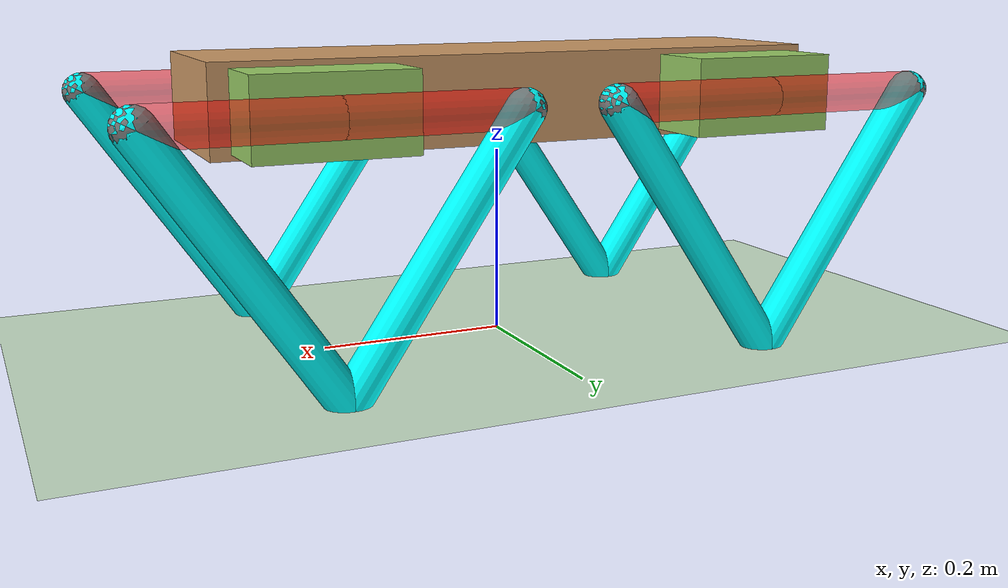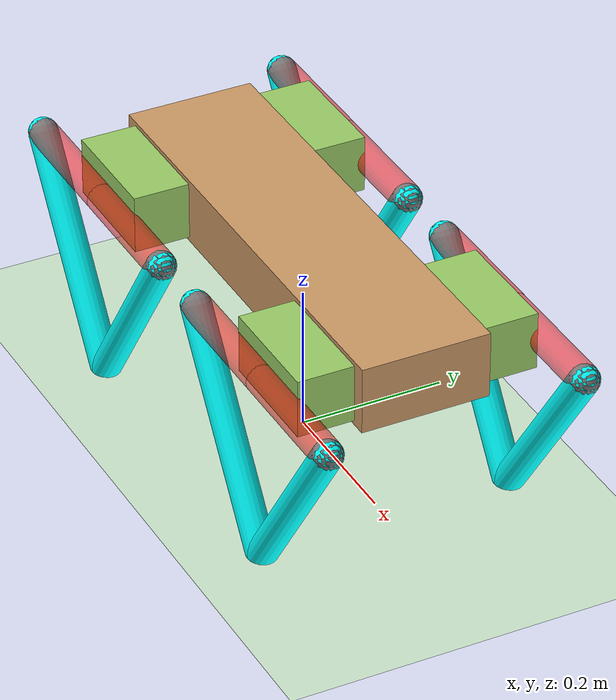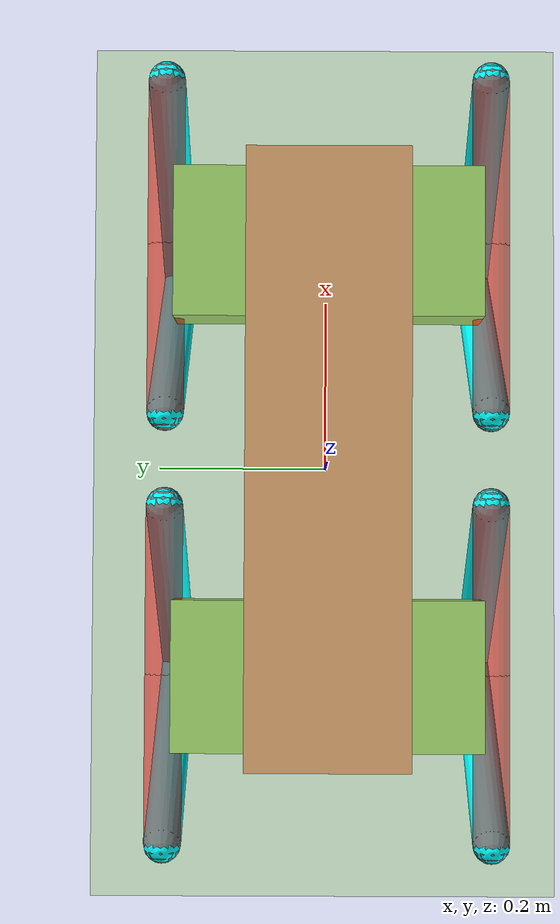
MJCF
<!-- Stanford Woofer Model

    The state space is populated with joints in the order that they are
    defined in this file.
-->
<mujoco model="woofer">
  <compiler angle="radian" coordinate="local" inertiafromgeom="true" settotalmass="woofer_mass"/>

  <default>
    <joint armature="0.0024" solimplimit="0.9 0.95 0.001" solreflimit="0.001 1" stiffness="0"/>
    <geom conaffinity="0" condim="3" contype="1" friction="1.5 .1 .1" rgba="0.8 0.6 .4 1" solimp="0.9 0.95 0.001" solref="0.005 2"/>
    <motor ctrllimited="true" forcelimited="true"/>
  </default>

	<option>
		<flag sensornoise="enable"/>
	</option>

	<sensor>
		<accelerometer name="accel" noise="0.01" site="imu_site"/>
		<gyro name="gyro" noise="0.02" site="imu_site"/>

		<jointpos joint="fr_x" noise="0.001"/>
		<jointpos joint="fr_thigh_1" noise="0.001"/>
		<jointpos joint="fr_thigh_2" noise="0.001"/>

		<jointpos joint="fl_x" noise="0.001"/>
		<jointpos joint="fl_thigh_1" noise="0.001"/>
		<jointpos joint="fl_thigh_2" noise="0.001"/>

		<jointpos joint="br_x" noise="0.001"/>
		<jointpos joint="br_thigh_1" noise="0.001"/>
		<jointpos joint="br_thigh_2" noise="0.001"/>

		<jointpos joint="bl_x" noise="0.001"/>
		<jointpos joint="bl_thigh_1" noise="0.001"/>
		<jointpos joint="bl_thigh_2" noise="0.001"/>

		<jointvel joint="fr_x" noise="0.01"/>
		<jointvel joint="fr_thigh_1" noise="0.01"/>
		<jointvel joint="fr_thigh_2" noise="0.01"/>

		<jointvel joint="fl_x" noise="0.01"/>
		<jointvel joint="fl_thigh_1" noise="0.01"/>
		<jointvel joint="fl_thigh_2" noise="0.01"/>

		<jointvel joint="br_x" noise="0.01"/>
		<jointvel joint="br_thigh_1" noise="0.01"/>
		<jointvel joint="br_thigh_2" noise="0.01"/>

		<jointvel joint="bl_x" noise="0.01"/>
		<jointvel joint="bl_thigh_1" noise="0.01"/>
		<jointvel joint="bl_thigh_2" noise="0.01"/>
	</sensor>

  <size nstack="300000" nuser_geom="1"/>

	<!-- Took out gravity="0 0 -9.81" term-->
  <option timestep="0.001"/>
  <asset>
    <texture builtin="gradient" height="100" rgb1="1 1 1" rgb2="0 0 0" type="skybox" width="100"/>
    <texture builtin="flat" height="1278" mark="cross" markrgb="1 1 1" name="texgeom" random="0.01" rgb1="0.8 0.6 0.4" rgb2="0.8 0.6 0.4" type="cube" width="127"/>
    <texture builtin="checker" height="100" name="texplane" rgb1="0 0 0" rgb2="0.8 0.8 0.8" type="2d" width="100"/>
    <material name="MatPlane" reflectance="0.5" shininess="1" specular="1" texrepeat="60 60" texture="texplane"/>
    <material name="geom" texture="texgeom" texuniform="true"/>
  </asset>

  <worldbody>
    <light cutoff="100" diffuse="1 1 1" dir="-0 0 -1.3" directional="true" exponent="1" pos="0 0 1.3" specular=".1 .1 .1"/>
    <geom conaffinity="1" condim="3" material="MatPlane" name="floor" pos="0 0 0" rgba="0.8 0.9 0.8 1" size="40 40 40" type="plane"/>

    <body name="torso" pos="0 0 0.2645751311064591">
      <camera name="track" mode="trackcom" pos="0 -2 0.3" xyaxes="1 0 0 0 0 1"/>
      <joint armature="0" axis="1 0 0" damping="0" limited="false" name="rootx" pos="0 0 0" stiffness="0" type="free"/>

      <geom pos="0 0 0" name="torso" size="0.33 0.088 0.046" type="box"/>

			<site name="imu_site" pos="0 0 0" size=".01 .01 .01" type="box"/>

      <body name="fr_module" pos="0.23 -0.175 0">
        <geom pos="0 0.05 0" name="fr_block" type="box" size="0.08 0.04 0.04" rgba="0.6 0.8 .4 1"/>

        <joint axis="1 0 0" name="fr_x" pos="0 0 0" limited="true" range="-3 3" type="hinge" damping="0.2"/>

        <body name="fr_thigh_1" pos="0.09 0 0">
          <joint axis="0 1 0" name="fr_thigh_1" pos="-0.09 0 0" limited="true" range="-3 3" type="hinge" damping="0.2"/>

					<!-- TODO: add in approximate inertia of each leg -->
					<geom axisangle="0 1 0 1.57" name="fr_thigh_1" size="0.02 0.09" type="capsule" rgba = "1 0 0 0.5" density="50"/>

					<body name="fr_shin_1" pos="0.00 0 -0.13228756555322954">
	          <joint axis="0 1 0" name="fr_shin_1" pos="0.09 0 0.13228756555322954" type="hinge"/>
	          <geom axisangle="0 1 0 0.5974064166453502" name="fr_shin_1" rgba="0 1 1 1" size="0.02 0.16" type="capsule"/>
        	</body>

        </body>

				<body name="fr_thigh_2" pos="-0.09 0 0">
          <joint axis="0 1 0" name="fr_thigh_2" pos="0.09 0 0" limited="true" range="-3 3" type="hinge" damping="0.2"/>

					<!-- TODO: add in approximate inertia of each leg -->
					<geom axisangle="0 1 0 1.57" name="fr_thigh_2" size="0.02 0.09" type="capsule" rgba = "1 0 0 0.5" density="50"/>

					<body name="fr_shin_2" pos="0.00 0 -0.13228756555322954">
	          <joint axis="0 1 0" name="fr_shin_2" pos="-0.09 0 0.13228756555322954" type="hinge"/>
	          <geom axisangle="0 1 0 -0.5974064166453502" name="fr_shin_2" rgba="0 1 1 1" size="0.02 0.16" type="capsule"/>
        	</body>

        </body>
      </body>

			<body name="fl_module" pos="0.23 0.175 0">
				<geom pos = "0 -0.05 0" name="fl_block" type="box" size="0.08 0.04 0.04" rgba="0.6 0.8 .4 1"/>

        <joint axis="1 0 0" name="fl_x" pos="0 0 0" limited="true" range="-3 3" type="hinge" damping="0.2"/>

        <body name="fl_thigh_1" pos="0.09 0 0">
          <joint axis="0 1 0" name="fl_thigh_1" pos="-0.09 0 0" limited="true" range="-3 3" type="hinge" damping="0.2"/>

					<!-- TODO: add in approximate inertia of each leg -->
					<geom axisangle="0 1 0 1.57" name="fl_thigh_1" size="0.02 0.09" type="capsule" rgba = "1 0 0 0.5" density="50"/>

					<body name="fl_shin_1" pos="0.00 0 -0.13228756555322954">
	          <joint axis="0 1 0" name="fl_shin_1" pos="0.09 0 0.13228756555322954" type="hinge"/>
	          <geom axisangle="0 1 0 0.5974064166453502" name="fl_shin_1" rgba="0 1 1 1" size="0.02 0.16" type="capsule"/>
        	</body>

        </body>

				<body name="fl_thigh_2" pos="-0.09 0 0">
          <joint axis="0 1 0" name="fl_thigh_2" pos="0.09 0 0" limited="true" range="-3 3" type="hinge" damping="0.2"/>

					<!-- TODO: add in approximate inertia of each leg -->
					<geom axisangle="0 1 0 1.57" name="fl_thigh_2" size="0.02 0.09" type="capsule" rgba = "1 0 0 0.5" density="50"/>

					<body name="fl_shin_2" pos="0.00 0 -0.13228756555322954">
	          <joint axis="0 1 0" name="fl_shin_2" pos="-0.09 0 0.13228756555322954" type="hinge"/>
	          <geom axisangle="0 1 0 -0.5974064166453502" name="fl_shin_2" rgba="0 1 1 1" size="0.02 0.16" type="capsule"/>
        	</body>

        </body>
      </body>

			<body name="br_module" pos="-0.23 -0.175 0">
        <geom pos="0 0.05 0" name="br_block" type="box" size="0.08 0.04 0.04" rgba="0.6 0.8 .4 1"/>

        <joint axis="1 0 0" name="br_x" pos="0 0 0" limited="true" range="-3 3" type="hinge" damping="0.2"/>

        <body name="br_thigh_1" pos="0.09 0 0">
          <joint axis="0 1 0" name="br_thigh_1" pos="-0.09 0 0" limited="true" range="-3 3" type="hinge" damping="0.2"/>

					<!-- TODO: add in approximate inertia of each leg -->
					<geom axisangle="0 1 0 1.57" name="br_thigh_1" size="0.02 0.09" type="capsule" rgba = "1 0 0 0.5" density="50"/>

					<body name="br_shin_1" pos="0.00 0 -0.13228756555322954">
	          <joint axis="0 1 0" name="br_shin_1" pos="0.09 0 0.13228756555322954" type="hinge"/>
	          <geom axisangle="0 1 0 0.5974064166453502" name="br_shin_1" rgba="0 1 1 1" size="0.02 0.16" type="capsule"/>
        	</body>

        </body>

				<body name="br_thigh_2" pos="-0.09 0 0">
          <joint axis="0 1 0" name="br_thigh_2" pos="0.09 0 0" limited="true" range="-3 3" type="hinge" damping="0.2"/>

					<!-- TODO: add in approximate inertia of each leg -->
					<geom axisangle="0 1 0 1.57" name="br_thigh_2" size="0.02 0.09" type="capsule" rgba = "1 0 0 0.5" density="50"/>

					<body name="br_shin_2" pos="0.00 0 -0.13228756555322954">
	          <joint axis="0 1 0" name="br_shin_2" pos="-0.09 0 0.13228756555322954" type="hinge"/>
	          <geom axisangle="0 1 0 -0.5974064166453502" name="br_shin_2" rgba="0 1 1 1" size="0.02 0.16" type="capsule"/>
        	</body>

        </body>
      </body>

			<body name="bl_module" pos="-0.23 0.175 0">
				<geom pos = "0 -0.05 0" name="bl_block" type="box" size="0.08 0.04 0.04" rgba="0.6 0.8 .4 1"/>

				<joint axis="1 0 0" name="bl_x" pos="0 0 0" limited="true" range="-3 3" type="hinge" damping="0.2"/>

				<body name="bl_thigh_1" pos="0.09 0 0">
					<joint axis="0 1 0" name="bl_thigh_1" pos="-0.09 0 0" limited="true" range="-3 3" type="hinge" damping="0.2"/>

					<!-- TODO: add in approximate inertia of each leg -->
					<geom axisangle="0 1 0 1.57" name="bl_thigh_1" size="0.02 0.09" type="capsule" rgba = "1 0 0 0.5" density="50"/>

					<body name="bl_shin_1" pos="0.00 0 -0.13228756555322954">
						<joint axis="0 1 0" name="bl_shin_1" pos="0.09 0 0.13228756555322954" type="hinge"/>
						<geom axisangle="0 1 0 0.5974064166453502" name="bl_shin_1" rgba="0 1 1 1" size="0.02 0.16" type="capsule"/>
					</body>

				</body>

				<body name="bl_thigh_2" pos="-0.09 0 0">
					<joint axis="0 1 0" name="bl_thigh_2" pos="0.09 0 0" limited="true" range="-3 3" type="hinge" damping="0.2"/>

					<!-- TODO: add in approximate inertia of each leg -->
					<geom axisangle="0 1 0 1.57" name="bl_thigh_2" size="0.02 0.09" type="capsule" rgba = "1 0 0 0.5" density="50"/>

					<body name="bl_shin_2" pos="0.00 0 -0.13228756555322954">
						<joint axis="0 1 0" name="bl_shin_2" pos="-0.09 0 0.13228756555322954" type="hinge"/>
						<geom axisangle="0 1 0 -0.5974064166453502" name="bl_shin_2" rgba="0 1 1 1" size="0.02 0.16" type="capsule"/>
					</body>

				</body>
			</body>

    </body>
  </worldbody>

	<equality>
	    <connect name="fr_connect" body1="fr_shin_1" body2="fr_shin_2" anchor="-0.09 0 -0.133"/>
	    <connect name="fl_connect" body1="fl_shin_1" body2="fl_shin_2" anchor="-0.09 0 -0.133"/>
	    <connect name="br_connect" body1="br_shin_1" body2="br_shin_2" anchor="-0.09 0 -0.133"/>
	    <connect name="bl_connect" body1="bl_shin_1" body2="bl_shin_2" anchor="-0.09 0 -0.133"/>
	</equality>

  <actuator>
		<motor gear="1" joint="fr_x" name="fr_x" forcerange="-12 12" ctrlrange="-12 12"/>
    <motor gear="1" joint="fr_thigh_1" name="fr_thigh_1" forcerange="-12 12" ctrlrange="-12 12"/>
    <motor gear="1" joint="fr_thigh_2" name="fr_thigh_2" forcerange="-12 12" ctrlrange="-12 12"/>

		<motor gear="1" joint="fl_x" name="fl_x" forcerange="-12 12" ctrlrange="-12 12"/>
    <motor gear="1" joint="fl_thigh_1" name="fl_thigh_1" forcerange="-12 12" ctrlrange="-12 12"/>
    <motor gear="1" joint="fl_thigh_2" name="fl_thigh_2" forcerange="-12 12" ctrlrange="-12 12"/>

		<motor gear="1" joint="br_x" name="br_x" forcerange="-12 12" ctrlrange="-12 12"/>
    <motor gear="1" joint="br_thigh_1" name="br_thigh_1" forcerange="-12 12" ctrlrange="-12 12"/>
    <motor gear="1" joint="br_thigh_2" name="br_thigh_2" forcerange="-12 12" ctrlrange="-12 12"/>

		<motor gear="1" joint="bl_x" name="bl_x" forcerange="-12 12" ctrlrange="-12 12"/>
    <motor gear="1" joint="bl_thigh_1" name="bl_thigh_1" forcerange="-12 12" ctrlrange="-12 12"/>
    <motor gear="1" joint="bl_thigh_2" name="bl_thigh_2" forcerange="-12 12" ctrlrange="-12 12"/>
  </actuator>
</mujoco>
